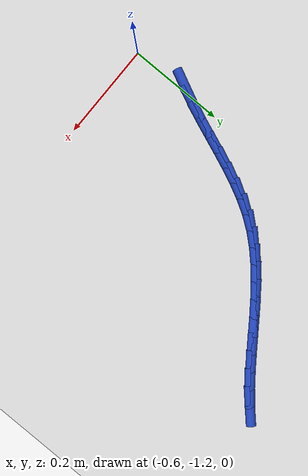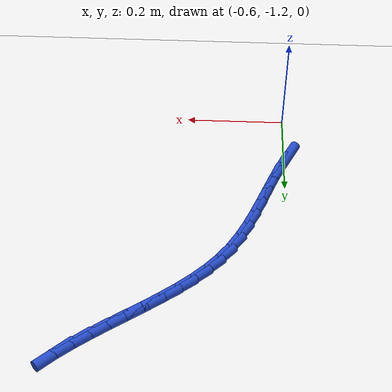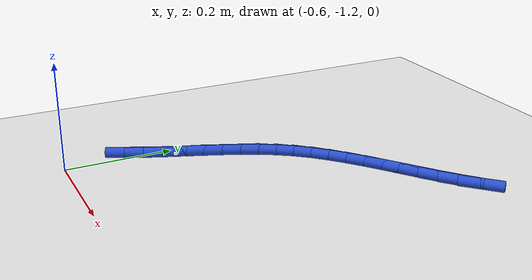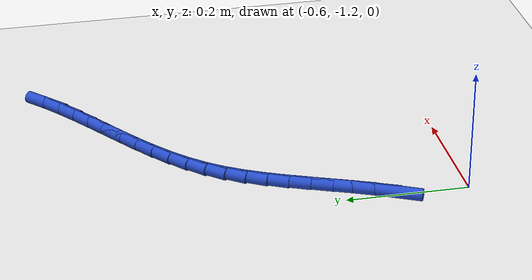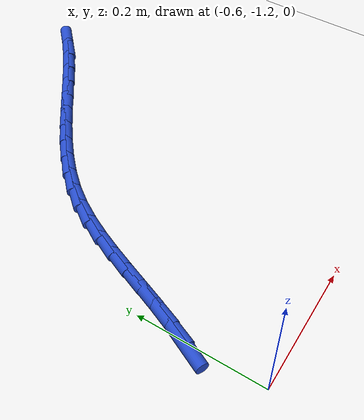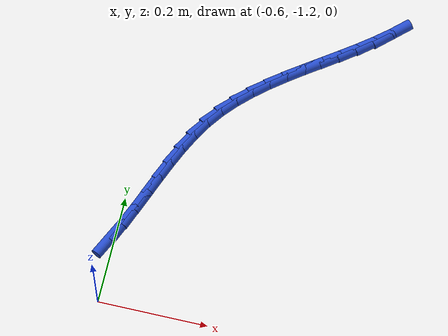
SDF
<sdf version="1.6">
 <world name="default">
  <model name="ground_plane">
   <static>1</static>
   <link name="link">
    <collision name="collision">
     <geometry><plane><normal>0 0 1</normal><size>100 100</size></plane></geometry>
     <surface><friction><ode><mu>100</mu><mu2>50</mu2></ode></friction></surface>
    </collision>
    <visual name="visual">
     <cast_shadows>0</cast_shadows>
     <geometry><plane><normal>0 0 1</normal><size>100 100</size></plane></geometry>
     <material>
      <script><uri>file://media/materials/scripts/gazebo.material</uri><name>Gazebo/WhiteGlow</name></script>
     </material>
    </visual>
   </link>
  </model>
  <model name="line">
   <link name="link_193">
    <pose>-0.6068529202277742 -1.0813365881414736 0.01 0 1.57 1.1252341046802072</pose>
    <collision name="collision">
     <geometry><cylinder><radius>0.01</radius><length>0.08</length></cylinder></geometry>
    </collision>
    <visual name="visual">
     <material>
      <script><name>Gazebo/Blue</name><uri>file://media/materials/scripts/gazebo.material</uri></script>
     </material>
     <geometry><cylinder><radius>0.01</radius><length>0.08</length></cylinder></geometry>
    </visual>
   </link>
   <link name="link_194">
    <pose>-0.5916340231744774 -1.0494707880529093 0.01 0 1.57 1.1685674300043545</pose>
    <collision name="collision">
     <geometry><cylinder><radius>0.01</radius><length>0.08</length></cylinder></geometry>
    </collision>
    <visual name="visual">
     <material>
      <script><name>Gazebo/Blue</name><uri>file://media/materials/scripts/gazebo.material</uri></script>
     </material>
     <geometry><cylinder><radius>0.01</radius><length>0.08</length></cylinder></geometry>
    </visual>
   </link>
   <link name="link_195">
    <pose>-0.5777755365157865 -1.016895008361575 0.01 0 1.57 1.1935815336355948</pose>
    <collision name="collision">
     <geometry><cylinder><radius>0.01</radius><length>0.08</length></cylinder></geometry>
    </collision>
    <visual name="visual">
     <material>
      <script><name>Gazebo/Blue</name><uri>file://media/materials/scripts/gazebo.material</uri></script>
     </material>
     <geometry><cylinder><radius>0.01</radius><length>0.08</length></cylinder></geometry>
    </visual>
   </link>
   <link name="link_196">
    <pose>-0.5647319678303737 -0.9839722313015227 0.01 0 1.57 1.2005107940564959</pose>
    <collision name="collision">
     <geometry><cylinder><radius>0.01</radius><length>0.08</length></cylinder></geometry>
    </collision>
    <visual name="visual">
     <material>
      <script><name>Gazebo/Blue</name><uri>file://media/materials/scripts/gazebo.material</uri></script>
     </material>
     <geometry><cylinder><radius>0.01</radius><length>0.08</length></cylinder></geometry>
    </visual>
   </link>
   <link name="link_197">
    <pose>-0.5519578246969107 -0.951065439106803 0.01 0 1.57 1.189254661856532</pose>
    <collision name="collision">
     <geometry><cylinder><radius>0.01</radius><length>0.08</length></cylinder></geometry>
    </collision>
    <visual name="visual">
     <material>
      <script><name>Gazebo/Blue</name><uri>file://media/materials/scripts/gazebo.material</uri></script>
     </material>
     <geometry><cylinder><radius>0.01</radius><length>0.08</length></cylinder></geometry>
    </visual>
   </link>
   <link name="link_198">
    <pose>-0.5389076146940704 -0.9185376140114693 0.01 0 1.57 1.159298619267301</pose>
    <collision name="collision">
     <geometry><cylinder><radius>0.01</radius><length>0.08</length></cylinder></geometry>
    </collision>
    <visual name="visual">
     <material>
      <script><name>Gazebo/Blue</name><uri>file://media/materials/scripts/gazebo.material</uri></script>
     </material>
     <geometry><cylinder><radius>0.01</radius><length>0.08</length></cylinder></geometry>
    </visual>
   </link>
   <link name="link_199">
    <pose>-0.525035845400525 -0.8867517382495724 0.01 0 1.57 1.1098027624825433</pose>
    <collision name="collision">
     <geometry><cylinder><radius>0.01</radius><length>0.08</length></cylinder></geometry>
    </collision>
    <visual name="visual">
     <material>
      <script><name>Gazebo/Blue</name><uri>file://media/materials/scripts/gazebo.material</uri></script>
     </material>
     <geometry><cylinder><radius>0.01</radius><length>0.08</length></cylinder></geometry>
    </visual>
   </link>
   <link name="link_200">
    <pose>-0.5097970243949459 -0.8560707940551638 0.01 0 1.57 1.039906067520197</pose>
    <collision name="collision">
     <geometry><cylinder><radius>0.01</radius><length>0.08</length></cylinder></geometry>
    </collision>
    <visual name="visual">
     <material>
      <script><name>Gazebo/Blue</name><uri>file://media/materials/scripts/gazebo.material</uri></script>
     </material>
     <geometry><cylinder><radius>0.01</radius><length>0.08</length></cylinder></geometry>
    </visual>
   </link>
   <link name="link_201">
    <pose>-0.49264565925600545 -0.8268577636622949 0.01 0 1.57 0.9497588806601357</pose>
    <collision name="collision">
     <geometry><cylinder><radius>0.01</radius><length>0.08</length></cylinder></geometry>
    </collision>
    <visual name="visual">
     <material>
      <script><name>Gazebo/Blue</name><uri>file://media/materials/scripts/gazebo.material</uri></script>
     </material>
     <geometry><cylinder><radius>0.01</radius><length>0.08</length></cylinder></geometry>
    </visual>
   </link>
   <link name="link_202">
    <pose>-0.47304828769246915 -0.7994671012813562 0.01 0 1.57 0.8553397993970231</pose>
    <collision name="collision">
     <geometry><cylinder><radius>0.01</radius><length>0.08</length></cylinder></geometry>
    </collision>
    <visual name="visual">
     <material>
      <script><name>Gazebo/Blue</name><uri>file://media/materials/scripts/gazebo.material</uri></script>
     </material>
     <geometry><cylinder><radius>0.01</radius><length>0.08</length></cylinder></geometry>
    </visual>
   </link>
   <link name="link_203">
    <pose>-0.4508826118541779 -0.7739617912836284 0.01 0 1.57 0.7763073478843064</pose>
    <collision name="collision">
     <geometry><cylinder><radius>0.01</radius><length>0.08</length></cylinder></geometry>
    </collision>
    <visual name="visual">
     <material>
      <script><name>Gazebo/Blue</name><uri>file://media/materials/scripts/gazebo.material</uri></script>
     </material>
     <geometry><cylinder><radius>0.01</radius><length>0.08</length></cylinder></geometry>
    </visual>
   </link>
   <link name="link_204">
    <pose>-0.4265298829476711 -0.7500478577882974 0.01 0 1.57 0.7139649475529081</pose>
    <collision name="collision">
     <geometry><cylinder><radius>0.01</radius><length>0.08</length></cylinder></geometry>
    </collision>
    <visual name="visual">
     <material>
      <script><name>Gazebo/Blue</name><uri>file://media/materials/scripts/gazebo.material</uri></script>
     </material>
     <geometry><cylinder><radius>0.01</radius><length>0.08</length></cylinder></geometry>
    </visual>
   </link>
   <link name="link_205">
    <pose>-0.4004020975116559 -0.7274095298950263 0.01 0 1.57 0.667733302264757</pose>
    <collision name="collision">
     <geometry><cylinder><radius>0.01</radius><length>0.08</length></cylinder></geometry>
    </collision>
    <visual name="visual">
     <material>
      <script><name>Gazebo/Blue</name><uri>file://media/materials/scripts/gazebo.material</uri></script>
     </material>
     <geometry><cylinder><radius>0.01</radius><length>0.08</length></cylinder></geometry>
    </visual>
   </link>
   <link name="link_206">
    <pose>-0.37291125208483955 -0.7057310367034784 0.01 0 1.57 0.6367843959164664</pose>
    <collision name="collision">
     <geometry><cylinder><radius>0.01</radius><length>0.08</length></cylinder></geometry>
    </collision>
    <visual name="visual">
     <material>
      <script><name>Gazebo/Blue</name><uri>file://media/materials/scripts/gazebo.material</uri></script>
     </material>
     <geometry><cylinder><radius>0.01</radius><length>0.08</length></cylinder></geometry>
    </visual>
   </link>
   <link name="link_207">
    <pose>-0.3444693432059305 -0.6846966073133174 0.01 0 1.57 0.6203737574291949</pose>
    <collision name="collision">
     <geometry><cylinder><radius>0.01</radius><length>0.08</length></cylinder></geometry>
    </collision>
    <visual name="visual">
     <material>
      <script><name>Gazebo/Blue</name><uri>file://media/materials/scripts/gazebo.material</uri></script>
     </material>
     <geometry><cylinder><radius>0.01</radius><length>0.08</length></cylinder></geometry>
    </visual>
   </link>
   <link name="link_208">
    <pose>-0.3154883674136355 -0.6639904708242066 0.01 0 1.57 0.6180200787771712</pose>
    <collision name="collision">
     <geometry><cylinder><radius>0.01</radius><length>0.08</length></cylinder></geometry>
    </collision>
    <visual name="visual">
     <material>
      <script><name>Gazebo/Blue</name><uri>file://media/materials/scripts/gazebo.material</uri></script>
     </material>
     <geometry><cylinder><radius>0.01</radius><length>0.08</length></cylinder></geometry>
    </visual>
   </link>
   <link name="link_209">
    <pose>-0.2863803212466621 -0.6432968563358091 0.01 0 1.57 0.6295808518504767</pose>
    <collision name="collision">
     <geometry><cylinder><radius>0.01</radius><length>0.08</length></cylinder></geometry>
    </collision>
    <visual name="visual">
     <material>
      <script><name>Gazebo/Blue</name><uri>file://media/materials/scripts/gazebo.material</uri></script>
     </material>
     <geometry><cylinder><radius>0.01</radius><length>0.08</length></cylinder></geometry>
    </visual>
   </link>
   <link name="link_210">
    <pose>-0.257557201243717 -0.6222999929477876 0.01 0 1.57 0.6552564859754584</pose>
    <collision name="collision">
     <geometry><cylinder><radius>0.01</radius><length>0.08</length></cylinder></geometry>
    </collision>
    <visual name="visual">
     <material>
      <script><name>Gazebo/Blue</name><uri>file://media/materials/scripts/gazebo.material</uri></script>
     </material>
     <geometry><cylinder><radius>0.01</radius><length>0.08</length></cylinder></geometry>
    </visual>
   </link>
   <link name="link_211">
    <pose>-0.22943100394350907 -0.6006841097598069 0.01 0 1.57 0.6955301532834133</pose>
    <collision name="collision">
     <geometry><cylinder><radius>0.01</radius><length>0.08</length></cylinder></geometry>
    </collision>
    <visual name="visual">
     <material>
      <script><name>Gazebo/Blue</name><uri>file://media/materials/scripts/gazebo.material</uri></script>
     </material>
     <geometry><cylinder><radius>0.01</radius><length>0.08</length></cylinder></geometry>
    </visual>
   </link>
   <link name="link_212">
    <pose>-0.20241372588474502 -0.5781334358715294 0.01 0 1.57 0.7510261198942376</pose>
    <collision name="collision">
     <geometry><cylinder><radius>0.01</radius><length>0.08</length></cylinder></geometry>
    </collision>
    <visual name="visual">
     <material>
      <script><name>Gazebo/Blue</name><uri>file://media/materials/scripts/gazebo.material</uri></script>
     </material>
     <geometry><cylinder><radius>0.01</radius><length>0.08</length></cylinder></geometry>
    </visual>
   </link>
  </model>
 </world>
</sdf>
